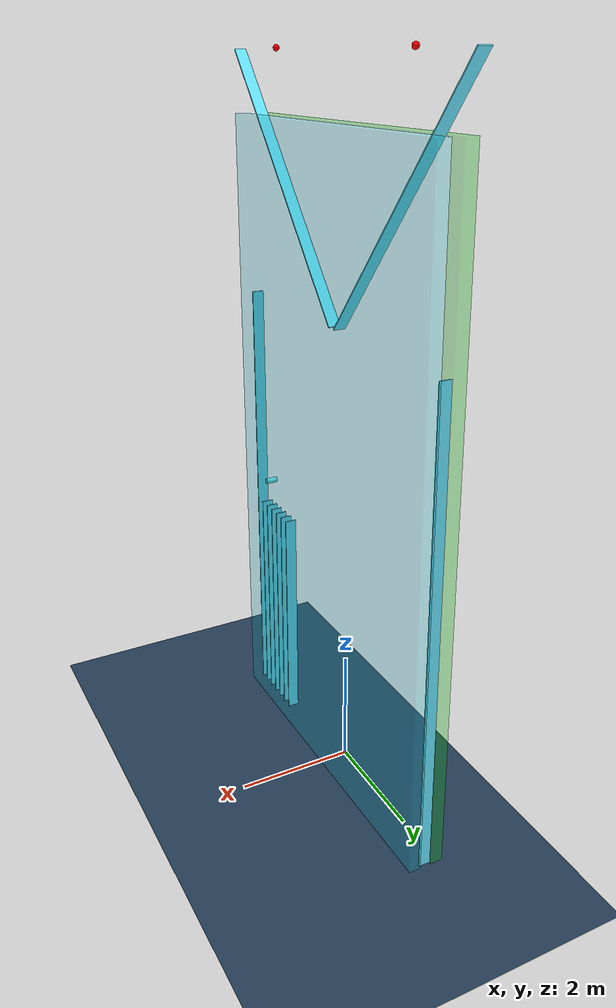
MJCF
<mujoco>
  <visual>
    <headlight diffuse="0.6 0.6 0.6" ambient="0.1 0.1 0.1" specular="0 0 0"/>
    <rgba haze="0.15 0.25 0.35 1"/>
    <global azimuth="120" elevation="-20"/>
  </visual>

  <asset>
    <texture type="skybox" builtin="gradient" rgb1="0.3 0.5 0.7" rgb2="0 0 0" width="512" height="3072"/>
    <texture type="2d" name="groundplane" builtin="checker" mark="edge" rgb1="0.2 0.3 0.4" rgb2="0.1 0.2 0.3"
      markrgb="0.8 0.8 0.8" width="300" height="300"/>
    <material name="groundplane" texture="groundplane" texuniform="true" texrepeat="5 5" reflectance="0.2"/>
  </asset>

  <worldbody>
    <light pos="0 0 1.5" dir="0 0 -1" directional="true"/>
    <geom name="floor" size="0 0 0.05" type="plane" material="groundplane"/>
      <body name="backboard" pos="0 0 5.5">
			  <geom type="box" size=".1 3 5.5" rgba="0 .9 0 .3	"/>
	  </body>
      <body name="frontboard" pos="0.4 0 5.5">
			  <geom type="box" size=".1 3 5.5" rgba="0 .9 09 .25"/>
	  </body>

      <body name="left_column" pos=".2 -2.95 4">
			  <geom type="box" size=".1 .01 4" rgba="0.4 .9 09 1"/>
		  </body>
      <body name="right_column" pos=".2 2.95 4">
			  <geom type="box" size=".1 .01 4" rgba="0.4 .9 09 1"/>
		  </body>

      <body name="left_ball_ramp" pos=".2 -1.75 10" euler="40 0 0">
			  <geom type="box" size=".1 .01 2.6" rgba="0.4 .9 09 1"/>
	  </body>

      <body name="right_ball_ramp" pos=".2 1.75 10" euler="-40 0 0">
			  <geom type="box" size=".1 .01 2.6" rgba="0.4 .9 09 1"/>
	  </body>

	  <body pos=".2 2 12">
	          <freejoint />
			  <geom type="sphere" size=".05" rgba="1 0. 0 1"/>
	  </body>
	  <body pos=".2 -2 12">
	          <freejoint />
			  <geom type="sphere" size=".05" rgba="1 0. 0 1"/>
	  </body>

      <body  pos=".2 -2.75 2">
			  <geom type="box" size=".1 .01 2" rgba="0.4 .9 09 1"/>
		  </body>
      <body pos=".2 -2.55 2">
			  <geom type="box" size=".1 .01 2" rgba="0.4 .9 09 1"/>
		  </body>

      <body  pos=".2 -2.35 2">
			  <geom type="box" size=".1 .01 2" rgba="0.4 .9 09 1"/>
		  </body>
      <body pos=".2 -2.15 2">
			  <geom type="box" size=".1 .01 2" rgba="0.4 .9 09 1"/>
		  </body>

      <body  pos=".2 -1.95 2">
			  <geom type="box" size=".1 .01 2" rgba="0.4 .9 09 1"/>
		  </body>
      <body pos=".2 -1.75 2">
			  <geom type="box" size=".1 .01 2" rgba="0.4 .9 09 1"/>
		  </body>

      <body  pos=".2 -2.75 2">
			  <geom type="box" size=".1 .01 2" rgba="0.4 .9 09 1"/>
		  </body>
      <body pos=".2 -2.55 2">
			  <geom type="box" size=".1 .01 2" rgba="0.4 .9 09 1"/>
		  </body>

      <body  pos=".2 -2.75 2">
			  <geom type="box" size=".1 .01 2" rgba="0.4 .9 09 1"/>
		  </body>
      <body pos=".2 -2.55 2">
			  <geom type="box" size=".1 .01 2" rgba="0.4 .9 09 1"/>
		  </body>

      <body  pos=".2 -2.75 2">
			  <geom type="box" size=".1 .01 2" rgba="0.4 .9 09 1"/>
		  </body>
      <body pos=".2 -2.55 2">
			  <geom type="box" size=".1 .01 2" rgba="0.4 .9 09 1"/>
	  </body>
	  <body pos=".2 -2.55 4.5" euler="0 90 0">
			  <geom type="cylinder" size=".05 .1" rgba="0.4 .9 0.9 1"/>
	  </body>

  </worldbody>
</mujoco>
